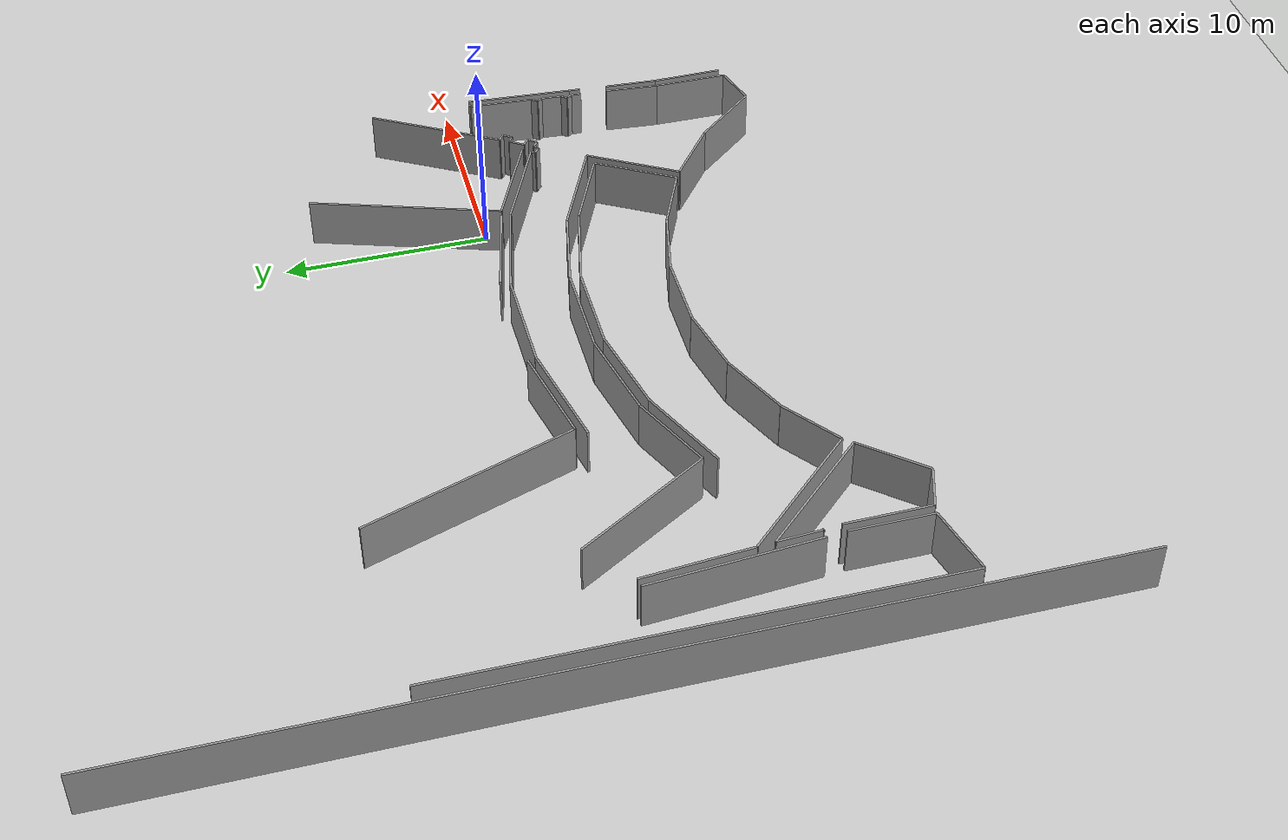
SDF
<sdf version="1.6">
 <world name="default">
  <model name="ground_plane">
   <static>1</static>
   <link name="link">
    <collision name="collision">
     <geometry><plane><normal>0 0 1</normal><size>100 100</size></plane></geometry>
     <surface><friction><ode><mu>100</mu><mu2>50</mu2></ode></friction></surface>
    </collision>
    <visual name="visual">
     <cast_shadows>0</cast_shadows>
     <geometry><plane><normal>0 0 1</normal><size>100 100</size></plane></geometry>
     <material>
      <script><uri>file://media/materials/scripts/gazebo.material</uri><name>Gazebo/Grey</name></script>
     </material>
    </visual>
   </link>
  </model>
  <model name="50032446">
   <static>1</static>
   <link name="Wall_0">
    <collision name="Wall_0_Collision">
     <geometry><box><size>24.1739835477 0.1 2.5</size></box></geometry>
     <pose>12.0869917738 0 1.25 0 0 0</pose>
    </collision>
    <visual name="Wall_0_Visual">
     <pose>12.0869917738 0 1.25 0 0 0</pose>
     <geometry><box><size>24.1739835477 0.1 2.5</size></box></geometry>
     <material>
      <script><uri>file://media/materials/scripts/gazebo.material</uri><name>Gazebo/Grey</name></script>
      <ambient>1 1 1 1</ambient>
     </material>
    </visual>
    <pose>0.829860753686 -37.8040334028 0 0 0 1.57079632679</pose>
   </link>
   <link name="Wall_5">
    <collision name="Wall_5_Collision">
     <geometry><box><size>8.28211737133 0.1 2.5</size></box></geometry>
     <pose>4.14105868566 0 1.25 0 0 0</pose>
    </collision>
    <visual name="Wall_5_Visual">
     <pose>4.14105868566 0 1.25 0 0 0</pose>
     <geometry><box><size>8.28211737133 0.1 2.5</size></box></geometry>
     <material>
      <script><uri>file://media/materials/scripts/gazebo.material</uri><name>Gazebo/Grey</name></script>
      <ambient>1 1 1 1</ambient>
     </material>
    </visual>
    <pose>3.52074461258 -23.7835804488 0 0 0 -1.49396794606</pose>
   </link>
   <link name="Wall_6">
    <collision name="Wall_6_Collision">
     <geometry><box><size>3.99400670243 0.1 2.5</size></box></geometry>
     <pose>1.99700335121 0 1.25 0 0 0</pose>
    </collision>
    <visual name="Wall_6_Visual">
     <pose>1.99700335121 0 1.25 0 0 0</pose>
     <geometry><box><size>3.99400670243 0.1 2.5</size></box></geometry>
     <material>
      <script><uri>file://media/materials/scripts/gazebo.material</uri><name>Gazebo/Grey</name></script>
      <ambient>1 1 1 1</ambient>
     </material>
    </visual>
    <pose>4.25198791682 -32.9682200186 0 0 0 -1.57079632679</pose>
   </link>
   <link name="Wall_7">
    <collision name="Wall_7_Collision">
     <geometry><box><size>3.52414426638 0.1 2.5</size></box></geometry>
     <pose>1.76207213319 0 1.25 0 0 0</pose>
    </collision>
    <visual name="Wall_7_Visual">
     <pose>1.76207213319 0 1.25 0 0 0</pose>
     <geometry><box><size>3.52414426638 0.1 2.5</size></box></geometry>
     <material>
      <script><uri>file://media/materials/scripts/gazebo.material</uri><name>Gazebo/Grey</name></script>
      <ambient>1 1 1 1</ambient>
     </material>
    </visual>
    <pose>4.25198791682 -36.962226721 0 0 0 -2.90039231001</pose>
   </link>
   <link name="Wall_8">
    <collision name="Wall_8_Collision">
     <geometry><box><size>5.32268536726 0.1 2.5</size></box></geometry>
     <pose>2.66134268363 0 1.25 0 0 0</pose>
    </collision>
    <visual name="Wall_8_Visual">
     <pose>2.66134268363 0 1.25 0 0 0</pose>
     <geometry><box><size>5.32268536726 0.1 2.5</size></box></geometry>
     <material>
      <script><uri>file://media/materials/scripts/gazebo.material</uri><name>Gazebo/Grey</name></script>
      <ambient>1 1 1 1</ambient>
     </material>
    </visual>
    <pose>4.3676346681 -29.0288595832 0 0 0 1.65172872614</pose>
   </link>
   <link name="Wall_12">
    <collision name="Wall_12_Collision">
     <geometry><box><size>4.74820361784 0.1 2.5</size></box></geometry>
     <pose>2.37410180892 0 1.25 0 0 0</pose>
    </collision>
    <visual name="Wall_12_Visual">
     <pose>2.37410180892 0 1.25 0 0 0</pose>
     <geometry><box><size>4.74820361784 0.1 2.5</size></box></geometry>
     <material>
      <script><uri>file://media/materials/scripts/gazebo.material</uri><name>Gazebo/Grey</name></script>
      <ambient>1 1 1 1</ambient>
     </material>
    </visual>
    <pose>9.72525636089 -28.9142295067 0 0 0 0.423490957335</pose>
   </link>
   <link name="Wall_13">
    <collision name="Wall_13_Collision">
     <geometry><box><size>4.50643660933 0.1 2.5</size></box></geometry>
     <pose>2.25321830466 0 1.25 0 0 0</pose>
    </collision>
    <visual name="Wall_13_Visual">
     <pose>2.25321830466 0 1.25 0 0 0</pose>
     <geometry><box><size>4.50643660933 0.1 2.5</size></box></geometry>
     <material>
      <script><uri>file://media/materials/scripts/gazebo.material</uri><name>Gazebo/Grey</name></script>
      <ambient>1 1 1 1</ambient>
     </material>
    </visual>
    <pose>14.0540032203 -26.9629765186 0 0 0 0.214441688872</pose>
   </link>
   <link name="Wall_14">
    <collision name="Wall_14_Collision">
     <geometry><box><size>4.48481380662 0.1 2.5</size></box></geometry>
     <pose>2.24240690331 0 1.25 0 0 0</pose>
    </collision>
    <visual name="Wall_14_Visual">
     <pose>2.24240690331 0 1.25 0 0 0</pose>
     <geometry><box><size>4.48481380662 0.1 2.5</size></box></geometry>
     <material>
      <script><uri>file://media/materials/scripts/gazebo.material</uri><name>Gazebo/Grey</name></script>
      <ambient>1 1 1 1</ambient>
     </material>
    </visual>
    <pose>18.4572215042 -26.0039980734 0 0 0 -0.00181354292536</pose>
   </link>
   <link name="Wall_15">
    <collision name="Wall_15_Collision">
     <geometry><box><size>4.53220053649 0.1 2.5</size></box></geometry>
     <pose>2.26610026825 0 1.25 0 0 0</pose>
    </collision>
    <visual name="Wall_15_Visual">
     <pose>2.26610026825 0 1.25 0 0 0</pose>
     <geometry><box><size>4.53220053649 0.1 2.5</size></box></geometry>
     <material>
      <script><uri>file://media/materials/scripts/gazebo.material</uri><name>Gazebo/Grey</name></script>
      <ambient>1 1 1 1</ambient>
     </material>
    </visual>
    <pose>22.9420279357 -26.0121314713 0 0 0 -0.218887926637</pose>
   </link>
   <link name="Wall_16">
    <collision name="Wall_16_Collision">
     <geometry><box><size>4.20378438465 0.1 2.5</size></box></geometry>
     <pose>2.10189219233 0 1.25 0 0 0</pose>
    </collision>
    <visual name="Wall_16_Visual">
     <pose>2.10189219233 0 1.25 0 0 0</pose>
     <geometry><box><size>4.20378438465 0.1 2.5</size></box></geometry>
     <material>
      <script><uri>file://media/materials/scripts/gazebo.material</uri><name>Gazebo/Grey</name></script>
      <ambient>1 1 1 1</ambient>
     </material>
    </visual>
    <pose>27.3660880517 -26.9962726162 0 0 0 -0.423970440159</pose>
   </link>
   <link name="Wall_17">
    <collision name="Wall_17_Collision">
     <geometry><box><size>4.279005851 0.1 2.5</size></box></geometry>
     <pose>2.1395029255 0 1.25 0 0 0</pose>
    </collision>
    <visual name="Wall_17_Visual">
     <pose>2.1395029255 0 1.25 0 0 0</pose>
     <geometry><box><size>4.279005851 0.1 2.5</size></box></geometry>
     <material>
      <script><uri>file://media/materials/scripts/gazebo.material</uri><name>Gazebo/Grey</name></script>
      <ambient>1 1 1 1</ambient>
     </material>
    </visual>
    <pose>31.1976809649 -28.7256363431 0 0 0 -2.10239390479</pose>
   </link>
   <link name="Wall_18">
    <collision name="Wall_18_Collision">
     <geometry><box><size>3.35407861106 0.1 2.5</size></box></geometry>
     <pose>1.67703930553 0 1.25 0 0 0</pose>
    </collision>
    <visual name="Wall_18_Visual">
     <pose>1.67703930553 0 1.25 0 0 0</pose>
     <geometry><box><size>3.35407861106 0.1 2.5</size></box></geometry>
     <material>
      <script><uri>file://media/materials/scripts/gazebo.material</uri><name>Gazebo/Grey</name></script>
      <ambient>1 1 1 1</ambient>
     </material>
    </visual>
    <pose>29.0286054146 -32.4141322872 0 0 0 2.72506874094</pose>
   </link>
   <link name="Wall_19">
    <collision name="Wall_19_Collision">
     <geometry><box><size>3.47486728361 0.1 2.5</size></box></geometry>
     <pose>1.7374336418 0 1.25 0 0 0</pose>
    </collision>
    <visual name="Wall_19_Visual">
     <pose>1.7374336418 0 1.25 0 0 0</pose>
     <geometry><box><size>3.47486728361 0.1 2.5</size></box></geometry>
     <material>
      <script><uri>file://media/materials/scripts/gazebo.material</uri><name>Gazebo/Grey</name></script>
      <ambient>1 1 1 1</ambient>
     </material>
    </visual>
    <pose>25.9612977345 -31.0571256826 0 0 0 2.92260636075</pose>
   </link>
   <link name="Wall_20">
    <collision name="Wall_20_Collision">
     <geometry><box><size>3.71696283673 0.1 2.5</size></box></geometry>
     <pose>1.85848141836 0 1.25 0 0 0</pose>
    </collision>
    <visual name="Wall_20_Visual">
     <pose>1.85848141836 0 1.25 0 0 0</pose>
     <geometry><box><size>3.71696283673 0.1 2.5</size></box></geometry>
     <material>
      <script><uri>file://media/materials/scripts/gazebo.material</uri><name>Gazebo/Grey</name></script>
      <ambient>1 1 1 1</ambient>
     </material>
    </visual>
    <pose>22.5694166447 -30.3022446907 0 0 0 3.14159265359</pose>
   </link>
   <link name="Wall_21">
    <collision name="Wall_21_Collision">
     <geometry><box><size>3.47308468036 0.1 2.5</size></box></geometry>
     <pose>1.73654234018 0 1.25 0 0 0</pose>
    </collision>
    <visual name="Wall_21_Visual">
     <pose>1.73654234018 0 1.25 0 0 0</pose>
     <geometry><box><size>3.47308468036 0.1 2.5</size></box></geometry>
     <material>
      <script><uri>file://media/materials/scripts/gazebo.material</uri><name>Gazebo/Grey</name></script>
      <ambient>1 1 1 1</ambient>
     </material>
    </visual>
    <pose>18.852453808 -30.3022446907 0 0 0 -2.92526534497</pose>
   </link>
   <link name="Wall_22">
    <collision name="Wall_22_Collision">
     <geometry><box><size>3.60517069916 0.1 2.5</size></box></geometry>
     <pose>1.80258534958 0 1.25 0 0 0</pose>
    </collision>
    <visual name="Wall_22_Visual">
     <pose>1.80258534958 0 1.25 0 0 0</pose>
     <geometry><box><size>3.60517069916 0.1 2.5</size></box></geometry>
     <material>
      <script><uri>file://media/materials/scripts/gazebo.material</uri><name>Gazebo/Grey</name></script>
      <ambient>1 1 1 1</ambient>
     </material>
    </visual>
    <pose>15.4603185496 -31.0477214413 0 0 0 -2.71825011192</pose>
   </link>
   <link name="Wall_23">
    <collision name="Wall_23_Collision">
     <geometry><box><size>3.30429964282 0.1 2.5</size></box></geometry>
     <pose>1.65214982141 0 1.25 0 0 0</pose>
    </collision>
    <visual name="Wall_23_Visual">
     <pose>1.65214982141 0 1.25 0 0 0</pose>
     <geometry><box><size>3.30429964282 0.1 2.5</size></box></geometry>
     <material>
      <script><uri>file://media/materials/scripts/gazebo.material</uri><name>Gazebo/Grey</name></script>
      <ambient>1 1 1 1</ambient>
     </material>
    </visual>
    <pose>12.1734091264 -32.5287623637 0 0 0 -2.49984533519</pose>
   </link>
   <link name="Wall_24">
    <collision name="Wall_24_Collision">
     <geometry><box><size>7.52466770557 0.1 2.5</size></box></geometry>
     <pose>3.76233385279 0 1.25 0 0 0</pose>
    </collision>
    <visual name="Wall_24_Visual">
     <pose>3.76233385279 0 1.25 0 0 0</pose>
     <geometry><box><size>7.52466770557 0.1 2.5</size></box></geometry>
     <material>
      <script><uri>file://media/materials/scripts/gazebo.material</uri><name>Gazebo/Grey</name></script>
      <ambient>1 1 1 1</ambient>
     </material>
    </visual>
    <pose>9.5264964499 -34.5067030636 0 0 0 2.32621470609</pose>
   </link>
   <link name="Wall_34">
    <collision name="Wall_34_Collision">
     <geometry><box><size>5.43961863873 0.1 2.5</size></box></geometry>
     <pose>2.71980931937 0 1.25 0 0 0</pose>
    </collision>
    <visual name="Wall_34_Visual">
     <pose>2.71980931937 0 1.25 0 0 0</pose>
     <geometry><box><size>5.43961863873 0.1 2.5</size></box></geometry>
     <material>
      <script><uri>file://media/materials/scripts/gazebo.material</uri><name>Gazebo/Grey</name></script>
      <ambient>1 1 1 1</ambient>
     </material>
    </visual>
    <pose>12.7427469789 -23.8288224746 0 0 0 0.208071376055</pose>
   </link>
   <link name="Wall_35">
    <collision name="Wall_35_Collision">
     <geometry><box><size>5.22674560975 0.1 2.5</size></box></geometry>
     <pose>2.61337280487 0 1.25 0 0 0</pose>
    </collision>
    <visual name="Wall_35_Visual">
     <pose>2.61337280487 0 1.25 0 0 0</pose>
     <geometry><box><size>5.22674560975 0.1 2.5</size></box></geometry>
     <material>
      <script><uri>file://media/materials/scripts/gazebo.material</uri><name>Gazebo/Grey</name></script>
      <ambient>1 1 1 1</ambient>
     </material>
    </visual>
    <pose>18.0650392246 -22.7051427221 0 0 0 0.00282045546605</pose>
   </link>
   <link name="Wall_36">
    <collision name="Wall_36_Collision">
     <geometry><box><size>5.16999772746 0.1 2.5</size></box></geometry>
     <pose>2.58499886373 0 1.25 0 0 0</pose>
    </collision>
    <visual name="Wall_36_Visual">
     <pose>2.58499886373 0 1.25 0 0 0</pose>
     <geometry><box><size>5.16999772746 0.1 2.5</size></box></geometry>
     <material>
      <script><uri>file://media/materials/scripts/gazebo.material</uri><name>Gazebo/Grey</name></script>
      <ambient>1 1 1 1</ambient>
     </material>
    </visual>
    <pose>23.291764045 -22.6904009384 0 0 0 -0.218087714903</pose>
   </link>
   <link name="Wall_37">
    <collision name="Wall_37_Collision">
     <geometry><box><size>5.02176744036 0.1 2.5</size></box></geometry>
     <pose>2.51088372018 0 1.25 0 0 0</pose>
    </collision>
    <visual name="Wall_37_Visual">
     <pose>2.51088372018 0 1.25 0 0 0</pose>
     <geometry><box><size>5.02176744036 0.1 2.5</size></box></geometry>
     <material>
      <script><uri>file://media/materials/scripts/gazebo.material</uri><name>Gazebo/Grey</name></script>
      <ambient>1 1 1 1</ambient>
     </material>
    </visual>
    <pose>28.3392999432 -23.8089973172 0 0 0 -0.425362476963</pose>
   </link>
   <link name="Wall_38">
    <collision name="Wall_38_Collision">
     <geometry><box><size>0.234969566457 0.1 2.5</size></box></geometry>
     <pose>0.117484783228 0 1.25 0 0 0</pose>
    </collision>
    <visual name="Wall_38_Visual">
     <pose>0.117484783228 0 1.25 0 0 0</pose>
     <geometry><box><size>0.234969566457 0.1 2.5</size></box></geometry>
     <material>
      <script><uri>file://media/materials/scripts/gazebo.material</uri><name>Gazebo/Grey</name></script>
      <ambient>1 1 1 1</ambient>
     </material>
    </visual>
    <pose>32.9135737515 -25.881234599 0 0 0 -2.20261471312</pose>
   </link>
   <link name="Wall_39">
    <collision name="Wall_39_Collision">
     <geometry><box><size>0.404486842103 0.1 2.5</size></box></geometry>
     <pose>0.202243421052 0 1.25 0 0 0</pose>
    </collision>
    <visual name="Wall_39_Visual">
     <pose>0.202243421052 0 1.25 0 0 0</pose>
     <geometry><box><size>0.404486842103 0.1 2.5</size></box></geometry>
     <material>
      <script><uri>file://media/materials/scripts/gazebo.material</uri><name>Gazebo/Grey</name></script>
      <ambient>1 1 1 1</ambient>
     </material>
    </visual>
    <pose>32.77479765 -26.0708444373 0 0 0 -0.675427890104</pose>
   </link>
   <link name="Wall_40">
    <collision name="Wall_40_Collision">
     <geometry><box><size>0.286121244982 0.1 2.5</size></box></geometry>
     <pose>0.143060622491 0 1.25 0 0 0</pose>
    </collision>
    <visual name="Wall_40_Visual">
     <pose>0.143060622491 0 1.25 0 0 0</pose>
     <geometry><box><size>0.286121244982 0.1 2.5</size></box></geometry>
     <material>
      <script><uri>file://media/materials/scripts/gazebo.material</uri><name>Gazebo/Grey</name></script>
      <ambient>1 1 1 1</ambient>
     </material>
    </visual>
    <pose>33.0904751556 -26.323742278 0 0 0 0.785398163397</pose>
   </link>
   <link name="Wall_41">
    <collision name="Wall_41_Collision">
     <geometry><box><size>0.379067178921 0.1 2.5</size></box></geometry>
     <pose>0.18953358946 0 1.25 0 0 0</pose>
    </collision>
    <visual name="Wall_41_Visual">
     <pose>0.18953358946 0 1.25 0 0 0</pose>
     <geometry><box><size>0.379067178921 0.1 2.5</size></box></geometry>
     <material>
      <script><uri>file://media/materials/scripts/gazebo.material</uri><name>Gazebo/Grey</name></script>
      <ambient>1 1 1 1</ambient>
     </material>
    </visual>
    <pose>33.2927934282 -26.1214240055 0 0 0 -0.643635210978</pose>
   </link>
   <link name="Wall_42">
    <collision name="Wall_42_Collision">
     <geometry><box><size>0.5258211981 0.1 2.5</size></box></geometry>
     <pose>0.26291059905 0 1.25 0 0 0</pose>
    </collision>
    <visual name="Wall_42_Visual">
     <pose>0.26291059905 0 1.25 0 0 0</pose>
     <geometry><box><size>0.5258211981 0.1 2.5</size></box></geometry>
     <material>
      <script><uri>file://media/materials/scripts/gazebo.material</uri><name>Gazebo/Grey</name></script>
      <ambient>1 1 1 1</ambient>
     </material>
    </visual>
    <pose>33.5960166684 -26.3489049778 0 0 0 0.885713008364</pose>
   </link>
   <link name="Wall_43">
    <collision name="Wall_43_Collision">
     <geometry><box><size>0.455324168266 0.1 2.5</size></box></geometry>
     <pose>0.227662084133 0 1.25 0 0 0</pose>
    </collision>
    <visual name="Wall_43_Visual">
     <pose>0.227662084133 0 1.25 0 0 0</pose>
     <geometry><box><size>0.455324168266 0.1 2.5</size></box></geometry>
     <material>
      <script><uri>file://media/materials/scripts/gazebo.material</uri><name>Gazebo/Grey</name></script>
      <ambient>1 1 1 1</ambient>
     </material>
    </visual>
    <pose>33.9287234759 -25.9417267458 0 0 0 2.51394550892</pose>
   </link>
   <link name="Wall_44">
    <collision name="Wall_44_Collision">
     <geometry><box><size>0.793586963241 0.1 2.5</size></box></geometry>
     <pose>0.39679348162 0 1.25 0 0 0</pose>
    </collision>
    <visual name="Wall_44_Visual">
     <pose>0.39679348162 0 1.25 0 0 0</pose>
     <geometry><box><size>0.793586963241 0.1 2.5</size></box></geometry>
     <material>
      <script><uri>file://media/materials/scripts/gazebo.material</uri><name>Gazebo/Grey</name></script>
      <ambient>1 1 1 1</ambient>
     </material>
    </visual>
    <pose>33.5601788839 -25.6743412901 0 0 0 0.992742759811</pose>
   </link>
   <link name="Wall_45">
    <collision name="Wall_45_Collision">
     <geometry><box><size>0.359213643791 0.1 2.5</size></box></geometry>
     <pose>0.179606821896 0 1.25 0 0 0</pose>
    </collision>
    <visual name="Wall_45_Visual">
     <pose>0.179606821896 0 1.25 0 0 0</pose>
     <geometry><box><size>0.359213643791 0.1 2.5</size></box></geometry>
     <material>
      <script><uri>file://media/materials/scripts/gazebo.material</uri><name>Gazebo/Grey</name></script>
      <ambient>1 1 1 1</ambient>
     </material>
    </visual>
    <pose>33.993790659 -25.0096901811 0 0 0 -0.526342760232</pose>
   </link>
   <link name="Wall_46">
    <collision name="Wall_46_Collision">
     <geometry><box><size>0.477217323221 0.1 2.5</size></box></geometry>
     <pose>0.23860866161 0 1.25 0 0 0</pose>
    </collision>
    <visual name="Wall_46_Visual">
     <pose>0.23860866161 0 1.25 0 0 0</pose>
     <geometry><box><size>0.477217323221 0.1 2.5</size></box></geometry>
     <material>
      <script><uri>file://media/materials/scripts/gazebo.material</uri><name>Gazebo/Grey</name></script>
      <ambient>1 1 1 1</ambient>
     </material>
    </visual>
    <pose>34.3043847911 -25.1901499468 0 0 0 0.881581726008</pose>
   </link>
   <link name="Wall_47">
    <collision name="Wall_47_Collision">
     <geometry><box><size>0.420919379641 0.1 2.5</size></box></geometry>
     <pose>0.21045968982 0 1.25 0 0 0</pose>
    </collision>
    <visual name="Wall_47_Visual">
     <pose>0.21045968982 0 1.25 0 0 0</pose>
     <geometry><box><size>0.420919379641 0.1 2.5</size></box></geometry>
     <material>
      <script><uri>file://media/materials/scripts/gazebo.material</uri><name>Gazebo/Grey</name></script>
      <ambient>1 1 1 1</ambient>
     </material>
    </visual>
    <pose>34.6078621999 -24.8218595235 0 0 0 2.4532714843</pose>
   </link>
   <link name="Wall_48">
    <collision name="Wall_48_Collision">
     <geometry><box><size>6.83458041471 0.1 2.5</size></box></geometry>
     <pose>3.41729020735 0 1.25 0 0 0</pose>
    </collision>
    <visual name="Wall_48_Visual">
     <pose>3.41729020735 0 1.25 0 0 0</pose>
     <geometry><box><size>6.83458041471 0.1 2.5</size></box></geometry>
     <material>
      <script><uri>file://media/materials/scripts/gazebo.material</uri><name>Gazebo/Grey</name></script>
      <ambient>1 1 1 1</ambient>
     </material>
    </visual>
    <pose>34.2827804529 -24.5544740678 0 0 0 1.04044116084</pose>
   </link>
   <link name="Wall_51">
    <collision name="Wall_51_Collision">
     <geometry><box><size>0.151105366927 0.1 2.5</size></box></geometry>
     <pose>0.0755526834636 0 1.25 0 0 0</pose>
    </collision>
    <visual name="Wall_51_Visual">
     <pose>0.0755526834636 0 1.25 0 0 0</pose>
     <geometry><box><size>0.151105366927 0.1 2.5</size></box></geometry>
     <material>
      <script><uri>file://media/materials/scripts/gazebo.material</uri><name>Gazebo/Grey</name></script>
      <ambient>1 1 1 1</ambient>
     </material>
    </visual>
    <pose>37.5325812482 -23.6806421318 0 0 0 -2.81984209919</pose>
   </link>
   <link name="Wall_52">
    <collision name="Wall_52_Collision">
     <geometry><box><size>3.14623467171 0.1 2.5</size></box></geometry>
     <pose>1.57311733585 0 1.25 0 0 0</pose>
    </collision>
    <visual name="Wall_52_Visual">
     <pose>1.57311733585 0 1.25 0 0 0</pose>
     <geometry><box><size>3.14623467171 0.1 2.5</size></box></geometry>
     <material>
      <script><uri>file://media/materials/scripts/gazebo.material</uri><name>Gazebo/Grey</name></script>
      <ambient>1 1 1 1</ambient>
     </material>
    </visual>
    <pose>37.3892301103 -23.7284258444 0 0 0 -1.63627899473</pose>
   </link>
   <link name="Wall_53">
    <collision name="Wall_53_Collision">
     <geometry><box><size>0.362244860986 0.1 2.5</size></box></geometry>
     <pose>0.181122430493 0 1.25 0 0 0</pose>
    </collision>
    <visual name="Wall_53_Visual">
     <pose>0.181122430493 0 1.25 0 0 0</pose>
     <geometry><box><size>0.362244860986 0.1 2.5</size></box></geometry>
     <material>
      <script><uri>file://media/materials/scripts/gazebo.material</uri><name>Gazebo/Grey</name></script>
      <ambient>1 1 1 1</ambient>
     </material>
    </visual>
    <pose>37.1833534762 -26.8679174308 0 0 0 -2.20980686796</pose>
   </link>
   <link name="Wall_54">
    <collision name="Wall_54_Collision">
     <geometry><box><size>0.283537442398 0.1 2.5</size></box></geometry>
     <pose>0.141768721199 0 1.25 0 0 0</pose>
    </collision>
    <visual name="Wall_54_Visual">
     <pose>0.141768721199 0 1.25 0 0 0</pose>
     <geometry><box><size>0.283537442398 0.1 2.5</size></box></geometry>
     <material>
      <script><uri>file://media/materials/scripts/gazebo.material</uri><name>Gazebo/Grey</name></script>
      <ambient>1 1 1 1</ambient>
     </material>
    </visual>
    <pose>36.9673100947 -27.1586864054 0 0 0 -1.01561775067</pose>
   </link>
   <link name="Wall_55">
    <collision name="Wall_55_Collision">
     <geometry><box><size>1.02416299092 0.1 2.5</size></box></geometry>
     <pose>0.512081495459 0 1.25 0 0 0</pose>
    </collision>
    <visual name="Wall_55_Visual">
     <pose>0.512081495459 0 1.25 0 0 0</pose>
     <geometry><box><size>1.02416299092 0.1 2.5</size></box></geometry>
     <material>
      <script><uri>file://media/materials/scripts/gazebo.material</uri><name>Gazebo/Grey</name></script>
      <ambient>1 1 1 1</ambient>
     </material>
    </visual>
    <pose>37.116761281 -27.399638318 0 0 0 -1.63561462442</pose>
   </link>
   <link name="Wall_56">
    <collision name="Wall_56_Collision">
     <geometry><box><size>0.339147705268 0.1 2.5</size></box></geometry>
     <pose>0.169573852634 0 1.25 0 0 0</pose>
    </collision>
    <visual name="Wall_56_Visual">
     <pose>0.169573852634 0 1.25 0 0 0</pose>
     <geometry><box><size>0.339147705268 0.1 2.5</size></box></geometry>
     <material>
      <script><uri>file://media/materials/scripts/gazebo.material</uri><name>Gazebo/Grey</name></script>
      <ambient>1 1 1 1</ambient>
     </material>
    </visual>
    <pose>37.0504232544 -28.4216505969 0 0 0 -2.19975791157</pose>
   </link>
   <link name="Wall_57">
    <collision name="Wall_57_Collision">
     <geometry><box><size>0.299457311063 0.1 2.5</size></box></geometry>
     <pose>0.149728655532 0 1.25 0 0 0</pose>
    </collision>
    <visual name="Wall_57_Visual">
     <pose>0.149728655532 0 1.25 0 0 0</pose>
     <geometry><box><size>0.299457311063 0.1 2.5</size></box></geometry>
     <material>
      <script><uri>file://media/materials/scripts/gazebo.material</uri><name>Gazebo/Grey</name></script>
      <ambient>1 1 1 1</ambient>
     </material>
    </visual>
    <pose>36.8509008374 -28.695898607 0 0 0 -0.982322913489</pose>
   </link>
   <link name="Wall_58">
    <collision name="Wall_58_Collision">
     <geometry><box><size>0.517759265075 0.1 2.5</size></box></geometry>
     <pose>0.258879632538 0 1.25 0 0 0</pose>
    </collision>
    <visual name="Wall_58_Visual">
     <pose>0.258879632538 0 1.25 0 0 0</pose>
     <geometry><box><size>0.517759265075 0.1 2.5</size></box></geometry>
     <material>
      <script><uri>file://media/materials/scripts/gazebo.material</uri><name>Gazebo/Grey</name></script>
      <ambient>1 1 1 1</ambient>
     </material>
    </visual>
    <pose>37.0171271568 -28.9449839175 0 0 0 -1.60320148215</pose>
   </link>
   <link name="Wall_59">
    <collision name="Wall_59_Collision">
     <geometry><box><size>2.67150305465 0.1 2.5</size></box></geometry>
     <pose>1.33575152733 0 1.25 0 0 0</pose>
    </collision>
    <visual name="Wall_59_Visual">
     <pose>1.33575152733 0 1.25 0 0 0</pose>
     <geometry><box><size>2.67150305465 0.1 2.5</size></box></geometry>
     <material>
      <script><uri>file://media/materials/scripts/gazebo.material</uri><name>Gazebo/Grey</name></script>
      <ambient>1 1 1 1</ambient>
     </material>
    </visual>
    <pose>36.9068179479 -30.7971111187 0 0 0 -1.65557306755</pose>
   </link>
   <link name="Wall_60">
    <collision name="Wall_60_Collision">
     <geometry><box><size>3.63286189022 0.1 2.5</size></box></geometry>
     <pose>1.81643094511 0 1.25 0 0 0</pose>
    </collision>
    <visual name="Wall_60_Visual">
     <pose>1.81643094511 0 1.25 0 0 0</pose>
     <geometry><box><size>3.63286189022 0.1 2.5</size></box></geometry>
     <material>
      <script><uri>file://media/materials/scripts/gazebo.material</uri><name>Gazebo/Grey</name></script>
      <ambient>1 1 1 1</ambient>
     </material>
    </visual>
    <pose>36.680607819 -33.4590197476 0 0 0 -1.57478427179</pose>
   </link>
   <link name="Wall_61">
    <collision name="Wall_61_Collision">
     <geometry><box><size>2.14794624063 0.1 2.5</size></box></geometry>
     <pose>1.07397312032 0 1.25 0 0 0</pose>
    </collision>
    <visual name="Wall_61_Visual">
     <pose>1.07397312032 0 1.25 0 0 0</pose>
     <geometry><box><size>2.14794624063 0.1 2.5</size></box></geometry>
     <material>
      <script><uri>file://media/materials/scripts/gazebo.material</uri><name>Gazebo/Grey</name></script>
      <ambient>1 1 1 1</ambient>
     </material>
    </visual>
    <pose>36.666120204 -37.0918527499 0 0 0 -2.86041602968</pose>
   </link>
   <link name="Wall_62">
    <collision name="Wall_62_Collision">
     <geometry><box><size>3.84258173228 0.1 2.5</size></box></geometry>
     <pose>1.92129086614 0 1.25 0 0 0</pose>
    </collision>
    <visual name="Wall_62_Visual">
     <pose>1.92129086614 0 1.25 0 0 0</pose>
     <geometry><box><size>3.84258173228 0.1 2.5</size></box></geometry>
     <material>
      <script><uri>file://media/materials/scripts/gazebo.material</uri><name>Gazebo/Grey</name></script>
      <ambient>1 1 1 1</ambient>
     </material>
    </visual>
    <pose>34.6025246575 -37.6878783142 0 0 0 2.26730463256</pose>
   </link>
   <link name="Wall_63">
    <collision name="Wall_63_Collision">
     <geometry><box><size>3.39345985358 0.1 2.5</size></box></geometry>
     <pose>1.69672992679 0 1.25 0 0 0</pose>
    </collision>
    <visual name="Wall_63_Visual">
     <pose>1.69672992679 0 1.25 0 0 0</pose>
     <geometry><box><size>3.39345985358 0.1 2.5</size></box></geometry>
     <material>
      <script><uri>file://media/materials/scripts/gazebo.material</uri><name>Gazebo/Grey</name></script>
      <ambient>1 1 1 1</ambient>
     </material>
    </visual>
    <pose>32.1373425902 -34.7402840843 0 0 0 2.48706610471</pose>
   </link>
   <link name="Wall_64">
    <collision name="Wall_64_Collision">
     <geometry><box><size>4.81957316876 0.1 2.5</size></box></geometry>
     <pose>2.40978658438 0 1.25 0 0 0</pose>
    </collision>
    <visual name="Wall_64_Visual">
     <pose>2.40978658438 0 1.25 0 0 0</pose>
     <geometry><box><size>4.81957316876 0.1 2.5</size></box></geometry>
     <material>
      <script><uri>file://media/materials/scripts/gazebo.material</uri><name>Gazebo/Grey</name></script>
      <ambient>1 1 1 1</ambient>
     </material>
    </visual>
    <pose>29.4451878878 -32.6744010197 0 0 0 1.04000008908</pose>
   </link>
   <link name="Wall_65">
    <collision name="Wall_65_Collision">
     <geometry><box><size>5.19399997077 0.1 2.5</size></box></geometry>
     <pose>2.59699998539 0 1.25 0 0 0</pose>
    </collision>
    <visual name="Wall_65_Visual">
     <pose>2.59699998539 0 1.25 0 0 0</pose>
     <geometry><box><size>5.19399997077 0.1 2.5</size></box></geometry>
     <material>
      <script><uri>file://media/materials/scripts/gazebo.material</uri><name>Gazebo/Grey</name></script>
      <ambient>1 1 1 1</ambient>
     </material>
    </visual>
    <pose>31.8849530868 -28.5179805281 0 0 0 2.71206948212</pose>
   </link>
   <link name="Wall_66">
    <collision name="Wall_66_Collision">
     <geometry><box><size>4.23124031098 0.1 2.5</size></box></geometry>
     <pose>2.11562015549 0 1.25 0 0 0</pose>
    </collision>
    <visual name="Wall_66_Visual">
     <pose>2.11562015549 0 1.25 0 0 0</pose>
     <geometry><box><size>4.23124031098 0.1 2.5</size></box></geometry>
     <material>
      <script><uri>file://media/materials/scripts/gazebo.material</uri><name>Gazebo/Grey</name></script>
      <ambient>1 1 1 1</ambient>
     </material>
    </visual>
    <pose>27.1627531044 -26.3550050262 0 0 0 2.93873086479</pose>
   </link>
   <link name="Wall_67">
    <collision name="Wall_67_Collision">
     <geometry><box><size>4.7295708743 0.1 2.5</size></box></geometry>
     <pose>2.36478543715 0 1.25 0 0 0</pose>
    </collision>
    <visual name="Wall_67_Visual">
     <pose>2.36478543715 0 1.25 0 0 0</pose>
     <geometry><box><size>4.7295708743 0.1 2.5</size></box></geometry>
     <material>
      <script><uri>file://media/materials/scripts/gazebo.material</uri><name>Gazebo/Grey</name></script>
      <ambient>1 1 1 1</ambient>
     </material>
    </visual>
    <pose>23.0182785409 -25.5025232596 0 0 0 3.14159265359</pose>
   </link>
   <link name="Wall_68">
    <collision name="Wall_68_Collision">
     <geometry><box><size>4.58241704642 0.1 2.5</size></box></geometry>
     <pose>2.29120852321 0 1.25 0 0 0</pose>
    </collision>
    <visual name="Wall_68_Visual">
     <pose>2.29120852321 0 1.25 0 0 0</pose>
     <geometry><box><size>4.58241704642 0.1 2.5</size></box></geometry>
     <material>
      <script><uri>file://media/materials/scripts/gazebo.material</uri><name>Gazebo/Grey</name></script>
      <ambient>1 1 1 1</ambient>
     </material>
    </visual>
    <pose>18.2887076666 -25.5025232596 0 0 0 -2.92843452025</pose>
   </link>
   <link name="Wall_69">
    <collision name="Wall_69_Collision">
     <geometry><box><size>4.2697785824 0.1 2.5</size></box></geometry>
     <pose>2.1348892912 0 1.25 0 0 0</pose>
    </collision>
    <visual name="Wall_69_Visual">
     <pose>2.1348892912 0 1.25 0 0 0</pose>
     <geometry><box><size>4.2697785824 0.1 2.5</size></box></geometry>
     <material>
      <script><uri>file://media/materials/scripts/gazebo.material</uri><name>Gazebo/Grey</name></script>
      <ambient>1 1 1 1</ambient>
     </material>
    </visual>
    <pose>13.8100012836 -26.4719226209 0 0 0 -2.70949669591</pose>
   </link>
   <link name="Wall_70">
    <collision name="Wall_70_Collision">
     <geometry><box><size>7.4390831489 0.1 2.5</size></box></geometry>
     <pose>3.71954157445 0 1.25 0 0 0</pose>
    </collision>
    <visual name="Wall_70_Visual">
     <pose>3.71954157445 0 1.25 0 0 0</pose>
     <geometry><box><size>7.4390831489 0.1 2.5</size></box></geometry>
     <material>
      <script><uri>file://media/materials/scripts/gazebo.material</uri><name>Gazebo/Grey</name></script>
      <ambient>1 1 1 1</ambient>
     </material>
    </visual>
    <pose>9.93265800714 -28.2599993137 0 0 0 2.11123926521</pose>
   </link>
   <link name="Wall_74">
    <collision name="Wall_74_Collision">
     <geometry><box><size>10.7547165875 0.1 2.5</size></box></geometry>
     <pose>5.37735829373 0 1.25 0 0 0</pose>
    </collision>
    <visual name="Wall_74_Visual">
     <pose>5.37735829373 0 1.25 0 0 0</pose>
     <geometry><box><size>10.7547165875 0.1 2.5</size></box></geometry>
     <material>
      <script><uri>file://media/materials/scripts/gazebo.material</uri><name>Gazebo/Grey</name></script>
      <ambient>1 1 1 1</ambient>
     </material>
    </visual>
    <pose>13.117645788 -23.3281101669 0 0 0 1.89714308962</pose>
   </link>
   <link name="Wall_97">
    <collision name="Wall_97_Collision">
     <geometry><box><size>4.93816209186 0.1 2.5</size></box></geometry>
     <pose>2.46908104593 0 1.25 0 0 0</pose>
    </collision>
    <visual name="Wall_97_Visual">
     <pose>2.46908104593 0 1.25 0 0 0</pose>
     <geometry><box><size>4.93816209186 0.1 2.5</size></box></geometry>
     <material>
      <script><uri>file://media/materials/scripts/gazebo.material</uri><name>Gazebo/Grey</name></script>
      <ambient>1 1 1 1</ambient>
     </material>
    </visual>
    <pose>17.9478674612 -22.301268683 0 0 0 -2.93212418952</pose>
   </link>
   <link name="Wall_103">
    <collision name="Wall_103_Collision">
     <geometry><box><size>4.94884474694 0.1 2.5</size></box></geometry>
     <pose>2.47442237347 0 1.25 0 0 0</pose>
    </collision>
    <visual name="Wall_103_Visual">
     <pose>2.47442237347 0 1.25 0 0 0</pose>
     <geometry><box><size>4.94884474694 0.1 2.5</size></box></geometry>
     <material>
      <script><uri>file://media/materials/scripts/gazebo.material</uri><name>Gazebo/Grey</name></script>
      <ambient>1 1 1 1</ambient>
     </material>
    </visual>
    <pose>28.3682751732 -23.3563228908 0 0 0 2.91706888235</pose>
   </link>
   <link name="Wall_104">
    <collision name="Wall_104_Collision">
     <geometry><box><size>9.46765325649 0.1 2.5</size></box></geometry>
     <pose>4.73382662824 0 1.25 0 0 0</pose>
    </collision>
    <visual name="Wall_104_Visual">
     <pose>4.73382662824 0 1.25 0 0 0</pose>
     <geometry><box><size>9.46765325649 0.1 2.5</size></box></geometry>
     <material>
      <script><uri>file://media/materials/scripts/gazebo.material</uri><name>Gazebo/Grey</name></script>
      <ambient>1 1 1 1</ambient>
     </material>
    </visual>
    <pose>28.705557017 -23.4297776405 0 0 0 1.24710168649</pose>
   </link>
   <link name="Wall_114">
    <collision name="Wall_114_Collision">
     <geometry><box><size>4.93785525385 0.1 2.5</size></box></geometry>
     <pose>2.46892762693 0 1.25 0 0 0</pose>
    </collision>
    <visual name="Wall_114_Visual">
     <pose>2.46892762693 0 1.25 0 0 0</pose>
     <geometry><box><size>4.93785525385 0.1 2.5</size></box></geometry>
     <material>
      <script><uri>file://media/materials/scripts/gazebo.material</uri><name>Gazebo/Grey</name></script>
      <ambient>1 1 1 1</ambient>
     </material>
    </visual>
    <pose>33.1946843161 -25.4865106325 0 0 0 2.71197465213</pose>
   </link>
   <link name="Wall_115">
    <collision name="Wall_115_Collision">
     <geometry><box><size>5.23227559595 0.1 2.5</size></box></geometry>
     <pose>2.61613779797 0 1.25 0 0 0</pose>
    </collision>
    <visual name="Wall_115_Visual">
     <pose>2.61613779797 0 1.25 0 0 0</pose>
     <geometry><box><size>5.23227559595 0.1 2.5</size></box></geometry>
     <material>
      <script><uri>file://media/materials/scripts/gazebo.material</uri><name>Gazebo/Grey</name></script>
      <ambient>1 1 1 1</ambient>
     </material>
    </visual>
    <pose>37.4250678948 -28.9266837722 0 0 0 1.4991323817</pose>
   </link>
   <link name="Wall_121">
    <collision name="Wall_121_Collision">
     <geometry><box><size>3.44159298958 0.1 2.5</size></box></geometry>
     <pose>1.72079649479 0 1.25 0 0 0</pose>
    </collision>
    <visual name="Wall_121_Visual">
     <pose>1.72079649479 0 1.25 0 0 0</pose>
     <geometry><box><size>3.44159298958 0.1 2.5</size></box></geometry>
     <material>
      <script><uri>file://media/materials/scripts/gazebo.material</uri><name>Gazebo/Grey</name></script>
      <ambient>1 1 1 1</ambient>
     </material>
    </visual>
    <pose>37.1470073544 -36.9510432989 0 0 0 1.5801018189</pose>
   </link>
   <link name="Wall_122">
    <collision name="Wall_122_Collision">
     <geometry><box><size>2.64240806376 0.1 2.5</size></box></geometry>
     <pose>1.32120403188 0 1.25 0 0 0</pose>
    </collision>
    <visual name="Wall_122_Visual">
     <pose>1.32120403188 0 1.25 0 0 0</pose>
     <geometry><box><size>2.64240806376 0.1 2.5</size></box></geometry>
     <material>
      <script><uri>file://media/materials/scripts/gazebo.material</uri><name>Gazebo/Grey</name></script>
      <ambient>1 1 1 1</ambient>
     </material>
    </visual>
    <pose>37.1149821002 -33.5095993158 0 0 0 1.50832951632</pose>
   </link>
   <link name="Wall_123">
    <collision name="Wall_123_Collision">
     <geometry><box><size>0.564630454468 0.1 2.5</size></box></geometry>
     <pose>0.282315227234 0 1.25 0 0 0</pose>
    </collision>
    <visual name="Wall_123_Visual">
     <pose>0.282315227234 0 1.25 0 0 0</pose>
     <geometry><box><size>0.564630454468 0.1 2.5</size></box></geometry>
     <material>
      <script><uri>file://media/materials/scripts/gazebo.material</uri><name>Gazebo/Grey</name></script>
      <ambient>1 1 1 1</ambient>
     </material>
    </visual>
    <pose>37.3892301103 -29.4901757449 0 0 0 1.50728241152</pose>
   </link>
   <link name="Wall_267">
    <collision name="Wall_267_Collision">
     <geometry><box><size>2.12684085788 0.1 2.5</size></box></geometry>
     <pose>1.06342042894 0 1.25 0 0 0</pose>
    </collision>
    <visual name="Wall_267_Visual">
     <pose>1.06342042894 0 1.25 0 0 0</pose>
     <geometry><box><size>2.12684085788 0.1 2.5</size></box></geometry>
     <material>
      <script><uri>file://media/materials/scripts/gazebo.material</uri><name>Gazebo/Grey</name></script>
      <ambient>1 1 1 1</ambient>
     </material>
    </visual>
    <pose>4.56969877198 -31.9975498139 0 0 0 1.63034513737</pose>
   </link>
   <link name="Wall_268">
    <collision name="Wall_268_Collision">
     <geometry><box><size>6.91566397509 0.1 2.5</size></box></geometry>
     <pose>3.45783198754 0 1.25 0 0 0</pose>
    </collision>
    <visual name="Wall_268_Visual">
     <pose>3.45783198754 0 1.25 0 0 0</pose>
     <geometry><box><size>6.91566397509 0.1 2.5</size></box></geometry>
     <material>
      <script><uri>file://media/materials/scripts/gazebo.material</uri><name>Gazebo/Grey</name></script>
      <ambient>1 1 1 1</ambient>
     </material>
    </visual>
    <pose>4.44312276729 -29.8744787953 0 0 0 -0.819423043684</pose>
   </link>
   <link name="Wall_269">
    <collision name="Wall_269_Collision">
     <geometry><box><size>3.66173753116 0.1 2.5</size></box></geometry>
     <pose>1.83086876558 0 1.25 0 0 0</pose>
    </collision>
    <visual name="Wall_269_Visual">
     <pose>1.83086876558 0 1.25 0 0 0</pose>
     <geometry><box><size>3.66173753116 0.1 2.5</size></box></geometry>
     <material>
      <script><uri>file://media/materials/scripts/gazebo.material</uri><name>Gazebo/Grey</name></script>
      <ambient>1 1 1 1</ambient>
     </material>
    </visual>
    <pose>9.16405190633 -34.9281147419 0 0 0 -2.28191463204</pose>
   </link>
   <link name="Wall_270">
    <collision name="Wall_270_Collision">
     <geometry><box><size>2.15629834512 0.1 2.5</size></box></geometry>
     <pose>1.07814917256 0 1.25 0 0 0</pose>
    </collision>
    <visual name="Wall_270_Visual">
     <pose>1.07814917256 0 1.25 0 0 0</pose>
     <geometry><box><size>2.15629834512 0.1 2.5</size></box></geometry>
     <material>
      <script><uri>file://media/materials/scripts/gazebo.material</uri><name>Gazebo/Grey</name></script>
      <ambient>1 1 1 1</ambient>
     </material>
    </visual>
    <pose>6.77410376945 -37.7023659292 0 0 0 2.83456610496</pose>
   </link>
   <link name="Wall_271">
    <collision name="Wall_271_Collision">
     <geometry><box><size>4.17815953481 0.1 2.5</size></box></geometry>
     <pose>2.0890797674 0 1.25 0 0 0</pose>
    </collision>
    <visual name="Wall_271_Visual">
     <pose>2.0890797674 0 1.25 0 0 0</pose>
     <geometry><box><size>4.17815953481 0.1 2.5</size></box></geometry>
     <material>
      <script><uri>file://media/materials/scripts/gazebo.material</uri><name>Gazebo/Grey</name></script>
      <ambient>1 1 1 1</ambient>
     </material>
    </visual>
    <pose>4.71864162088 -37.0506774231 0 0 0 1.57882632818</pose>
   </link>
   <link name="Wall_272">
    <collision name="Wall_272_Collision">
     <geometry><box><size>0.0510872732459 0.1 2.5</size></box></geometry>
     <pose>0.025543636623 0 1.25 0 0 0</pose>
    </collision>
    <visual name="Wall_272_Visual">
     <pose>0.025543636623 0 1.25 0 0 0</pose>
     <geometry><box><size>0.0510872732459 0.1 2.5</size></box></geometry>
     <material>
      <script><uri>file://media/materials/scripts/gazebo.material</uri><name>Gazebo/Grey</name></script>
      <ambient>1 1 1 1</ambient>
     </material>
    </visual>
    <pose>4.59613231513 -32.0412668276 0 0 0 2.1146287831</pose>
   </link>
   <link name="Wall_275">
    <collision name="Wall_275_Collision">
     <geometry><box><size>45.5787992817 0.1 2.5</size></box></geometry>
     <pose>22.7893996409 0 1.25 0 0 0</pose>
    </collision>
    <visual name="Wall_275_Visual">
     <pose>22.7893996409 0 1.25 0 0 0</pose>
     <geometry><box><size>45.5787992817 0.1 2.5</size></box></geometry>
     <material>
      <script><uri>file://media/materials/scripts/gazebo.material</uri><name>Gazebo/Grey</name></script>
      <ambient>1 1 1 1</ambient>
     </material>
    </visual>
    <pose>0.0 -45.5787992817 0 0 0 1.57079632679</pose>
   </link>
   <pose>-29.75 22.7787992817 0 0 0 0</pose>
  </model>
 </world>
</sdf>
